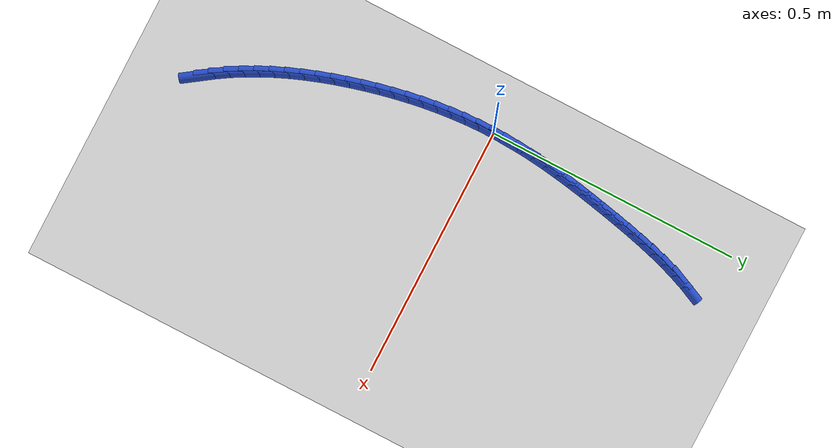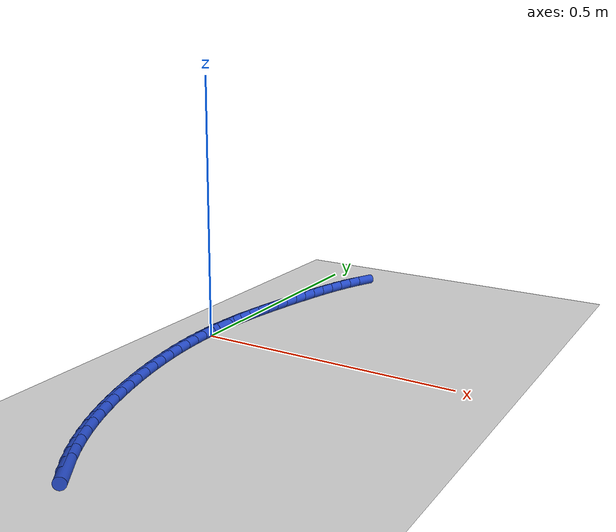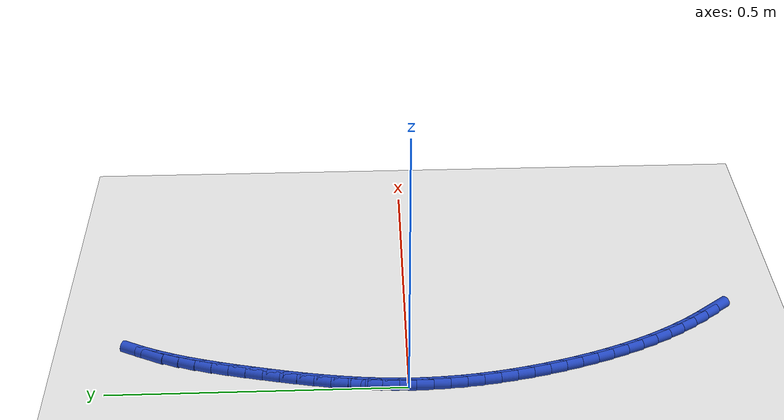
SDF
<sdf version="1.6">
 <world name="default">
  <model name="ground_plane">
   <static>1</static>
   <link name="link">
    <collision name="collision">
     <geometry><plane><normal>0 0 1</normal><size>100 100</size></plane></geometry>
     <surface><friction><ode><mu>100</mu><mu2>50</mu2></ode></friction></surface>
    </collision>
    <visual name="visual">
     <cast_shadows>0</cast_shadows>
     <geometry><plane><normal>0 0 1</normal><size>100 100</size></plane></geometry>
     <material>
      <script><uri>file://media/materials/scripts/gazebo.material</uri><name>Gazebo/WhiteGlow</name></script>
     </material>
    </visual>
   </link>
  </model>
  <model name="line">
   <link name="link_0">
    <pose>6.938893903907228e-18 -6.938893903907228e-18 0.01 0 1.57 1.5433155362156543</pose>
    <collision name="collision">
     <geometry><cylinder><radius>0.01</radius><length>0.08</length></cylinder></geometry>
    </collision>
    <visual name="visual">
     <material>
      <script><name>Gazebo/Blue</name><uri>file://media/materials/scripts/gazebo.material</uri></script>
     </material>
     <geometry><cylinder><radius>0.01</radius><length>0.08</length></cylinder></geometry>
    </visual>
   </link>
   <link name="link_1">
    <pose>0.0007640607451513946 0.027796449133164404 0.01 0 1.57 1.51154051715577</pose>
    <collision name="collision">
     <geometry><cylinder><radius>0.01</radius><length>0.08</length></cylinder></geometry>
    </collision>
    <visual name="visual">
     <material>
      <script><name>Gazebo/Blue</name><uri>file://media/materials/scripts/gazebo.material</uri></script>
     </material>
     <geometry><cylinder><radius>0.01</radius><length>0.08</length></cylinder></geometry>
    </visual>
   </link>
   <link name="link_2">
    <pose>0.0024102125542897405 0.05554435577636759 0.01 0 1.57 1.482532509718878</pose>
    <collision name="collision">
     <geometry><cylinder><radius>0.01</radius><length>0.08</length></cylinder></geometry>
    </collision>
    <visual name="visual">
     <material>
      <script><name>Gazebo/Blue</name><uri>file://media/materials/scripts/gazebo.material</uri></script>
     </material>
     <geometry><cylinder><radius>0.01</radius><length>0.08</length></cylinder></geometry>
    </visual>
   </link>
   <link name="link_3">
    <pose>0.00486376748906448 0.08327010149943316 0.01 0 1.57 1.4563945439730883</pose>
    <collision name="collision">
     <geometry><cylinder><radius>0.01</radius><length>0.08</length></cylinder></geometry>
    </collision>
    <visual name="visual">
     <material>
      <script><name>Gazebo/Blue</name><uri>file://media/materials/scripts/gazebo.material</uri></script>
     </material>
     <geometry><cylinder><radius>0.01</radius><length>0.08</length></cylinder></geometry>
    </visual>
   </link>
   <link name="link_4">
    <pose>0.00805003761112504 0.1110000678721846 0.01 0 1.57 1.433190987213368</pose>
    <collision name="collision">
     <geometry><cylinder><radius>0.01</radius><length>0.08</length></cylinder></geometry>
    </collision>
    <visual name="visual">
     <material>
      <script><name>Gazebo/Blue</name><uri>file://media/materials/scripts/gazebo.material</uri></script>
     </material>
     <geometry><cylinder><radius>0.01</radius><length>0.08</length></cylinder></geometry>
    </visual>
   </link>
   <link name="link_5">
    <pose>0.011894334982120863 0.13876063646444547 0.01 0 1.57 1.4129533662033298</pose>
    <collision name="collision">
     <geometry><cylinder><radius>0.01</radius><length>0.08</length></cylinder></geometry>
    </collision>
    <visual name="visual">
     <material>
      <script><name>Gazebo/Blue</name><uri>file://media/materials/scripts/gazebo.material</uri></script>
     </material>
     <geometry><cylinder><radius>0.01</radius><length>0.08</length></cylinder></geometry>
    </visual>
   </link>
   <link name="link_6">
    <pose>0.016321971663701373 0.1665781888460393 0.01 0 1.57 1.3956863175892353</pose>
    <collision name="collision">
     <geometry><cylinder><radius>0.01</radius><length>0.08</length></cylinder></geometry>
    </collision>
    <visual name="visual">
     <material>
      <script><name>Gazebo/Blue</name><uri>file://media/materials/scripts/gazebo.material</uri></script>
     </material>
     <geometry><cylinder><radius>0.01</radius><length>0.08</length></cylinder></geometry>
    </visual>
   </link>
   <link name="link_7">
    <pose>0.02125825971751601 0.19447910658678966 0.01 0 1.57 1.3813732203003999</pose>
    <collision name="collision">
     <geometry><cylinder><radius>0.01</radius><length>0.08</length></cylinder></geometry>
    </collision>
    <visual name="visual">
     <material>
      <script><name>Gazebo/Blue</name><uri>file://media/materials/scripts/gazebo.material</uri></script>
     </material>
     <geometry><cylinder><radius>0.01</radius><length>0.08</length></cylinder></geometry>
    </visual>
   </link>
   <link name="link_8">
    <pose>0.02662851120521419 0.22248977125652 0.01 0 1.57 1.3699812131314013</pose>
    <collision name="collision">
     <geometry><cylinder><radius>0.01</radius><length>0.08</length></cylinder></geometry>
    </collision>
    <visual name="visual">
     <material>
      <script><name>Gazebo/Blue</name><uri>file://media/materials/scripts/gazebo.material</uri></script>
     </material>
     <geometry><cylinder><radius>0.01</radius><length>0.08</length></cylinder></geometry>
    </visual>
   </link>
   <link name="link_9">
    <pose>0.03235803818844536 0.2506365644250539 0.01 0 1.57 1.360956822436799</pose>
    <collision name="collision">
     <geometry><cylinder><radius>0.01</radius><length>0.08</length></cylinder></geometry>
    </collision>
    <visual name="visual">
     <material>
      <script><name>Gazebo/Blue</name><uri>file://media/materials/scripts/gazebo.material</uri></script>
     </material>
     <geometry><cylinder><radius>0.01</radius><length>0.08</length></cylinder></geometry>
    </visual>
   </link>
   <link name="link_10">
    <pose>0.03838496811305587 0.27893537628266835 0.01 0 1.57 1.349193696677252</pose>
    <collision name="collision">
     <geometry><cylinder><radius>0.01</radius><length>0.08</length></cylinder></geometry>
    </collision>
    <visual name="visual">
     <material>
      <script><name>Gazebo/Blue</name><uri>file://media/materials/scripts/gazebo.material</uri></script>
     </material>
     <geometry><cylinder><radius>0.01</radius><length>0.08</length></cylinder></geometry>
    </visual>
   </link>
   <link name="link_11">
    <pose>0.04477505904789802 0.3072976115600427 0.01 0 1.57 1.331719144548799</pose>
    <collision name="collision">
     <geometry><cylinder><radius>0.01</radius><length>0.08</length></cylinder></geometry>
    </collision>
    <visual name="visual">
     <material>
      <script><name>Gazebo/Blue</name><uri>file://media/materials/scripts/gazebo.material</uri></script>
     </material>
     <geometry><cylinder><radius>0.01</radius><length>0.08</length></cylinder></geometry>
    </visual>
   </link>
   <link name="link_12">
    <pose>0.051667291412050544 0.3355747311378937 0.01 0 1.57 1.3083253099618146</pose>
    <collision name="collision">
     <geometry><cylinder><radius>0.01</radius><length>0.08</length></cylinder></geometry>
    </collision>
    <visual name="visual">
     <material>
      <script><name>Gazebo/Blue</name><uri>file://media/materials/scripts/gazebo.material</uri></script>
     </material>
     <geometry><cylinder><radius>0.01</radius><length>0.08</length></cylinder></geometry>
    </visual>
   </link>
   <link name="link_13">
    <pose>0.05920151471333022 0.3636174844130153 0.01 0 1.57 1.2787318895413793</pose>
    <collision name="collision">
     <geometry><cylinder><radius>0.01</radius><length>0.08</length></cylinder></geometry>
    </collision>
    <visual name="visual">
     <material>
      <script><name>Gazebo/Blue</name><uri>file://media/materials/scripts/gazebo.material</uri></script>
     </material>
     <geometry><cylinder><radius>0.01</radius><length>0.08</length></cylinder></geometry>
    </visual>
   </link>
   <link name="link_14">
    <pose>0.06751757845955386 0.3912766207822016 0.01 0 1.57 1.2425681040231191</pose>
    <collision name="collision">
     <geometry><cylinder><radius>0.01</radius><length>0.08</length></cylinder></geometry>
    </collision>
    <visual name="visual">
     <material>
      <script><name>Gazebo/Blue</name><uri>file://media/materials/scripts/gazebo.material</uri></script>
     </material>
     <geometry><cylinder><radius>0.01</radius><length>0.08</length></cylinder></geometry>
    </visual>
   </link>
   <link name="link_15">
    <pose>0.07675533215853834 0.41840288964224703 0.01 0 1.57 1.199397417457635</pose>
    <collision name="collision">
     <geometry><cylinder><radius>0.01</radius><length>0.08</length></cylinder></geometry>
    </collision>
    <visual name="visual">
     <material>
      <script><name>Gazebo/Blue</name><uri>file://media/materials/scripts/gazebo.material</uri></script>
     </material>
     <geometry><cylinder><radius>0.01</radius><length>0.08</length></cylinder></geometry>
    </visual>
   </link>
   <link name="link_16">
    <pose>0.08705462531810049 0.44484704038994594 0.01 0 1.57 1.1487566694844522</pose>
    <collision name="collision">
     <geometry><cylinder><radius>0.01</radius><length>0.08</length></cylinder></geometry>
    </collision>
    <visual name="visual">
     <material>
      <script><name>Gazebo/Blue</name><uri>file://media/materials/scripts/gazebo.material</uri></script>
     </material>
     <geometry><cylinder><radius>0.01</radius><length>0.08</length></cylinder></geometry>
    </visual>
   </link>
   <link name="link_220">
    <pose>0.1561640476832426 -0.5324308826289936 0.01 0 1.57 -0.9618825213067778</pose>
    <collision name="collision">
     <geometry><cylinder><radius>0.01</radius><length>0.08</length></cylinder></geometry>
    </collision>
    <visual name="visual">
     <material>
      <script><name>Gazebo/Blue</name><uri>file://media/materials/scripts/gazebo.material</uri></script>
     </material>
     <geometry><cylinder><radius>0.01</radius><length>0.08</length></cylinder></geometry>
    </visual>
   </link>
   <link name="link_221">
    <pose>0.1403481392020935 -0.5097493487015177 0.01 0 1.57 -1.0050544707811322</pose>
    <collision name="collision">
     <geometry><cylinder><radius>0.01</radius><length>0.08</length></cylinder></geometry>
    </collision>
    <visual name="visual">
     <material>
      <script><name>Gazebo/Blue</name><uri>file://media/materials/scripts/gazebo.material</uri></script>
     </material>
     <geometry><cylinder><radius>0.01</radius><length>0.08</length></cylinder></geometry>
    </visual>
   </link>
   <link name="link_222">
    <pose>0.1254906224310615 -0.4863508482236652 0.01 0 1.57 -1.049696737924734</pose>
    <collision name="collision">
     <geometry><cylinder><radius>0.01</radius><length>0.08</length></cylinder></geometry>
    </collision>
    <visual name="visual">
     <material>
      <script><name>Gazebo/Blue</name><uri>file://media/materials/scripts/gazebo.material</uri></script>
     </material>
     <geometry><cylinder><radius>0.01</radius><length>0.08</length></cylinder></geometry>
    </visual>
   </link>
   <link name="link_223">
    <pose>0.11163475244636033 -0.46221266131750516 0.01 0 1.57 -1.0915484472018602</pose>
    <collision name="collision">
     <geometry><cylinder><radius>0.01</radius><length>0.08</length></cylinder></geometry>
    </collision>
    <visual name="visual">
     <material>
      <script><name>Gazebo/Blue</name><uri>file://media/materials/scripts/gazebo.material</uri></script>
     </material>
     <geometry><cylinder><radius>0.01</radius><length>0.08</length></cylinder></geometry>
    </visual>
   </link>
   <link name="link_224">
    <pose>0.09874203062855778 -0.4374025166904412 0.01 0 1.57 -1.130568224179772</pose>
    <collision name="collision">
     <geometry><cylinder><radius>0.01</radius><length>0.08</length></cylinder></geometry>
    </collision>
    <visual name="visual">
     <material>
      <script><name>Gazebo/Blue</name><uri>file://media/materials/scripts/gazebo.material</uri></script>
     </material>
     <geometry><cylinder><radius>0.01</radius><length>0.08</length></cylinder></geometry>
    </visual>
   </link>
   <link name="link_225">
    <pose>0.0867715900112419 -0.4119907632816824 0.01 0 1.57 -1.1668625930972942</pose>
    <collision name="collision">
     <geometry><cylinder><radius>0.01</radius><length>0.08</length></cylinder></geometry>
    </collision>
    <visual name="visual">
     <material>
      <script><name>Gazebo/Blue</name><uri>file://media/materials/scripts/gazebo.material</uri></script>
     </material>
     <geometry><cylinder><radius>0.01</radius><length>0.08</length></cylinder></geometry>
    </visual>
   </link>
   <link name="link_226">
    <pose>0.07568256362800126 -0.3860477500304387 0.01 0 1.57 -1.2005537371995674</pose>
    <collision name="collision">
     <geometry><cylinder><radius>0.01</radius><length>0.08</length></cylinder></geometry>
    </collision>
    <visual name="visual">
     <material>
      <script><name>Gazebo/Blue</name><uri>file://media/materials/scripts/gazebo.material</uri></script>
     </material>
     <geometry><cylinder><radius>0.01</radius><length>0.08</length></cylinder></geometry>
    </visual>
   </link>
   <link name="link_227">
    <pose>0.06543408451242437 -0.3596438258759201 0.01 0 1.57 -1.2317718441596077</pose>
    <collision name="collision">
     <geometry><cylinder><radius>0.01</radius><length>0.08</length></cylinder></geometry>
    </collision>
    <visual name="visual">
     <material>
      <script><name>Gazebo/Blue</name><uri>file://media/materials/scripts/gazebo.material</uri></script>
     </material>
     <geometry><cylinder><radius>0.01</radius><length>0.08</length></cylinder></geometry>
    </visual>
   </link>
   <link name="link_228">
    <pose>0.05598528569809979 -0.33284933975733655 0.01 0 1.57 -1.2606491095306425</pose>
    <collision name="collision">
     <geometry><cylinder><radius>0.01</radius><length>0.08</length></cylinder></geometry>
    </collision>
    <visual name="visual">
     <material>
      <script><name>Gazebo/Blue</name><uri>file://media/materials/scripts/gazebo.material</uri></script>
     </material>
     <geometry><cylinder><radius>0.01</radius><length>0.08</length></cylinder></geometry>
    </visual>
   </link>
   <link name="link_229">
    <pose>0.04729530021861602 -0.3057346406138981 0.01 0 1.57 -1.2873151819321773</pose>
    <collision name="collision">
     <geometry><cylinder><radius>0.01</radius><length>0.08</length></cylinder></geometry>
    </collision>
    <visual name="visual">
     <material>
      <script><name>Gazebo/Blue</name><uri>file://media/materials/scripts/gazebo.material</uri></script>
     </material>
     <geometry><cylinder><radius>0.01</radius><length>0.08</length></cylinder></geometry>
    </visual>
   </link>
   <link name="link_230">
    <pose>0.03932326110756145 -0.2783700773848141 0.01 0 1.57 -1.3119057368278955</pose>
    <collision name="collision">
     <geometry><cylinder><radius>0.01</radius><length>0.08</length></cylinder></geometry>
    </collision>
    <visual name="visual">
     <material>
      <script><name>Gazebo/Blue</name><uri>file://media/materials/scripts/gazebo.material</uri></script>
     </material>
     <geometry><cylinder><radius>0.01</radius><length>0.08</length></cylinder></geometry>
    </visual>
   </link>
   <link name="link_231">
    <pose>0.03202860157882147 -0.2508258031899517 0.01 0 1.57 -1.3355357839814788</pose>
    <collision name="collision">
     <geometry><cylinder><radius>0.01</radius><length>0.08</length></cylinder></geometry>
    </collision>
    <visual name="visual">
     <material>
      <script><name>Gazebo/Blue</name><uri>file://media/materials/scripts/gazebo.material</uri></script>
     </material>
     <geometry><cylinder><radius>0.01</radius><length>0.08</length></cylinder></geometry>
    </visual>
   </link>
   <link name="link_232">
    <pose>0.025396045597197856 -0.2231554730035046 0.01 0 1.57 -1.3600262174308813</pose>
    <collision name="collision">
     <geometry><cylinder><radius>0.01</radius><length>0.08</length></cylinder></geometry>
    </collision>
    <visual name="visual">
     <material>
      <script><name>Gazebo/Blue</name><uri>file://media/materials/scripts/gazebo.material</uri></script>
     </material>
     <geometry><cylinder><radius>0.01</radius><length>0.08</length></cylinder></geometry>
    </visual>
   </link>
   <link name="link_233">
    <pose>0.01945440031091725 -0.19538398461550188 0.01 0 1.57 -1.3856042360992513</pose>
    <collision name="collision">
     <geometry><cylinder><radius>0.01</radius><length>0.08</length></cylinder></geometry>
    </collision>
    <visual name="visual">
     <material>
      <script><name>Gazebo/Blue</name><uri>file://media/materials/scripts/gazebo.material</uri></script>
     </material>
     <geometry><cylinder><radius>0.01</radius><length>0.08</length></cylinder></geometry>
    </visual>
   </link>
   <link name="link_234">
    <pose>0.014236899258353997 -0.16753334830861122 0.01 0 1.57 -1.412319971003863</pose>
    <collision name="collision">
     <geometry><cylinder><radius>0.01</radius><length>0.08</length></cylinder></geometry>
    </collision>
    <visual name="visual">
     <material>
      <script><name>Gazebo/Blue</name><uri>file://media/materials/scripts/gazebo.material</uri></script>
     </material>
     <geometry><cylinder><radius>0.01</radius><length>0.08</length></cylinder></geometry>
    </visual>
   </link>
   <link name="link_235">
    <pose>0.00977677597788239 -0.13962557436550008 0.01 0 1.57 -1.4402217146745404</pose>
    <collision name="collision">
     <geometry><cylinder><radius>0.01</radius><length>0.08</length></cylinder></geometry>
    </collision>
    <visual name="visual">
     <material>
      <script><name>Gazebo/Blue</name><uri>file://media/materials/scripts/gazebo.material</uri></script>
     </material>
     <geometry><cylinder><radius>0.01</radius><length>0.08</length></cylinder></geometry>
    </visual>
   </link>
   <link name="link_236">
    <pose>0.006107264007876742 -0.11168267306883595 0.01 0 1.57 -1.4693548628757922</pose>
    <collision name="collision">
     <geometry><cylinder><radius>0.01</radius><length>0.08</length></cylinder></geometry>
    </collision>
    <visual name="visual">
     <material>
      <script><name>Gazebo/Blue</name><uri>file://media/materials/scripts/gazebo.material</uri></script>
     </material>
     <geometry><cylinder><radius>0.01</radius><length>0.08</length></cylinder></geometry>
    </visual>
   </link>
   <link name="link_237">
    <pose>0.0032615968867113704 -0.08372665470128646 0.01 0 1.57 -1.49976065686976</pose>
    <collision name="collision">
     <geometry><cylinder><radius>0.01</radius><length>0.08</length></cylinder></geometry>
    </collision>
    <visual name="visual">
     <material>
      <script><name>Gazebo/Blue</name><uri>file://media/materials/scripts/gazebo.material</uri></script>
     </material>
     <geometry><cylinder><radius>0.01</radius><length>0.08</length></cylinder></geometry>
    </visual>
   </link>
   <link name="link_238">
    <pose>0.0012730081527605381 -0.055779529545518375 0.01 0 1.57 -1.531474719610396</pose>
    <collision name="collision">
     <geometry><cylinder><radius>0.01</radius><length>0.08</length></cylinder></geometry>
    </collision>
    <visual name="visual">
     <material>
      <script><name>Gazebo/Blue</name><uri>file://media/materials/scripts/gazebo.material</uri></script>
     </material>
     <geometry><cylinder><radius>0.01</radius><length>0.08</length></cylinder></geometry>
    </visual>
   </link>
   <link name="link_239">
    <pose>0.0001747313443986715 -0.027863307884200668 0.01 0 1.57 -1.5645253895931002</pose>
    <collision name="collision">
     <geometry><cylinder><radius>0.01</radius><length>0.08</length></cylinder></geometry>
    </collision>
    <visual name="visual">
     <material>
      <script><name>Gazebo/Blue</name><uri>file://media/materials/scripts/gazebo.material</uri></script>
     </material>
     <geometry><cylinder><radius>0.01</radius><length>0.08</length></cylinder></geometry>
    </visual>
   </link>
   <link name="link_240">
    <pose>7.806255641895632e-18 -1.457167719820518e-16 0.01 0 1.57 1.5426607830590822</pose>
    <collision name="collision">
     <geometry><cylinder><radius>0.01</radius><length>0.08</length></cylinder></geometry>
    </collision>
    <visual name="visual">
     <material>
      <script><name>Gazebo/Blue</name><uri>file://media/materials/scripts/gazebo.material</uri></script>
     </material>
     <geometry><cylinder><radius>0.01</radius><length>0.08</length></cylinder></geometry>
    </visual>
   </link>
   <link name="link_241">
    <pose>0.0007820476579388684 0.02778838382441564 0.01 0 1.57 1.506890419708566</pose>
    <collision name="collision">
     <geometry><cylinder><radius>0.01</radius><length>0.08</length></cylinder></geometry>
    </collision>
    <visual name="visual">
     <material>
      <script><name>Gazebo/Blue</name><uri>file://media/materials/scripts/gazebo.material</uri></script>
     </material>
     <geometry><cylinder><radius>0.01</radius><length>0.08</length></cylinder></geometry>
    </visual>
   </link>
   <link name="link_242">
    <pose>0.002554107856589558 0.05547983330637918 0.01 0 1.57 1.524792119081747</pose>
    <collision name="collision">
     <geometry><cylinder><radius>0.01</radius><length>0.08</length></cylinder></geometry>
    </collision>
    <visual name="visual">
     <material>
      <script><name>Gazebo/Blue</name><uri>file://media/materials/scripts/gazebo.material</uri></script>
     </material>
     <geometry><cylinder><radius>0.01</radius><length>0.08</length></cylinder></geometry>
    </visual>
   </link>
  </model>
 </world>
</sdf>
